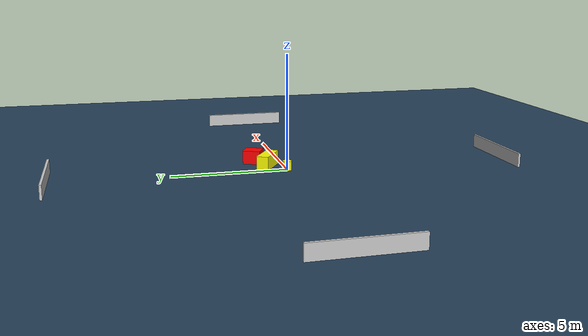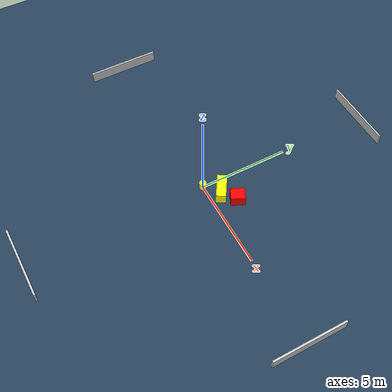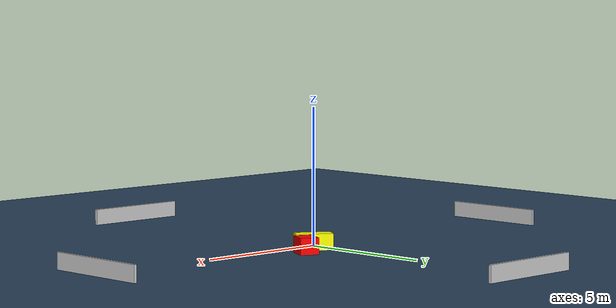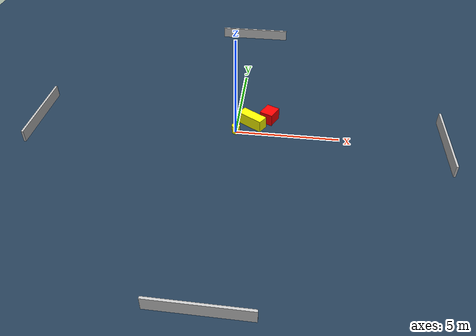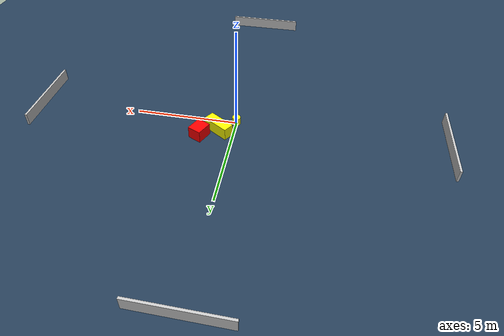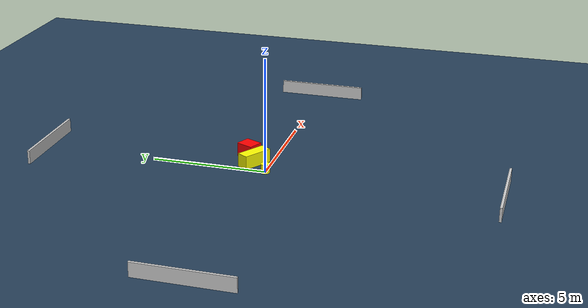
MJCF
<?xml version="1.0" ?>
<mujoco model="generated_environment">
  <option timestep="0.01" integrator="RK4" cone="elliptic"/>
  <default>
    <geom density="1"/>
  </default>
  <asset>
    <texture builtin="gradient" height="3072" name="skybox" rgb1="0.3 0.5 0.7" rgb2="0 0 0" type="skybox" width="512"/>
    <texture builtin="checker" height="300" name="groundplane" rgb1="0.2 0.3 0.4" rgb2="0.1 0.2 0.3" type="2d" width="300"/>
    <material name="groundplane" reflectance="0.2" texrepeat="5 5" texture="groundplane"/>
  </asset>
  <worldbody>
    <light dir="0 0 -1" directional="true" pos="0 0 1.5"/>
    <geom condim="3" friction="0.5 0.005 0.001" material="groundplane" name="floor" pos="0 0 0" size="0 0 0.05" type="plane"/>
    <body name="walls">
      <geom name="wall_1" condim="4" pos="-10.0 0.0 0.3" rgba="0.800000011920929 0.800000011920929 0.800000011920929 1.0" size="0.05 2.0 0.3" type="box"/>
      <geom name="wall_2" condim="4" pos="10.0 0.0 0.3" rgba="0.800000011920929 0.800000011920929 0.800000011920929 1.0" size="0.05 2.0 0.3" type="box"/>
      <geom name="wall_3" condim="4" pos="0.0 -10.0 0.3" rgba="0.800000011920929 0.800000011920929 0.800000011920929 1.0" size="2.0 0.05 0.3" type="box"/>
      <geom name="wall_4" condim="4" pos="0.0 10.0 0.3" rgba="0.800000011920929 0.800000011920929 0.800000011920929 1.0" size="2.0 0.05 0.3" type="box"/>
    </body>
    <body name="robot">
      <joint name="joint_x" type="slide" pos="0 0 0" axis="1 0 0"/>
      <joint name="joint_y" type="slide" pos="0 0 0" axis="0 1 0"/>
      <geom name="robot" type="cylinder" pos="0.0 0.0 0.2" size="0.2 0.2 0.0" mass="5.0" friction="1.0 0.005 0.0001" condim="4" rgba="1.0 1.0 0.0 1.0"/>
    </body>
    <body name="obstacle_1_movable">
      <geom name="obstacle_1_movable" condim="4" pos="0.7299209745376845 0.710221975845267 0.3" euler="0 0 237.69688240404858" friction="0.0 0.005 0.001" rgba="1.0 1.0 0.0 1.0" size="0.2635342382171407 0.6740005451980935 0.3" type="box" mass="0.1"/>
      <joint type="free"/>
    </body>
    <body name="obstacle_2_static">
      <geom name="obstacle_2_static" condim="4" pos="1.564757941892053 1.1969031117511157 0.3" euler="0 0 64.87896116572166" friction="0.0 0.005 0.001" rgba="1.0 0.0 0.0 1.0" size="0.3861038501719414 0.3357504331347705 0.3" type="box"/>
    </body>
  </worldbody>
  <actuator>
    <motor name="actuator_x" joint="joint_x" gear="1" ctrlrange="-1 1"/>
    <motor name="actuator_y" joint="joint_y" gear="1" ctrlrange="-1 1"/>
  </actuator>
</mujoco>
